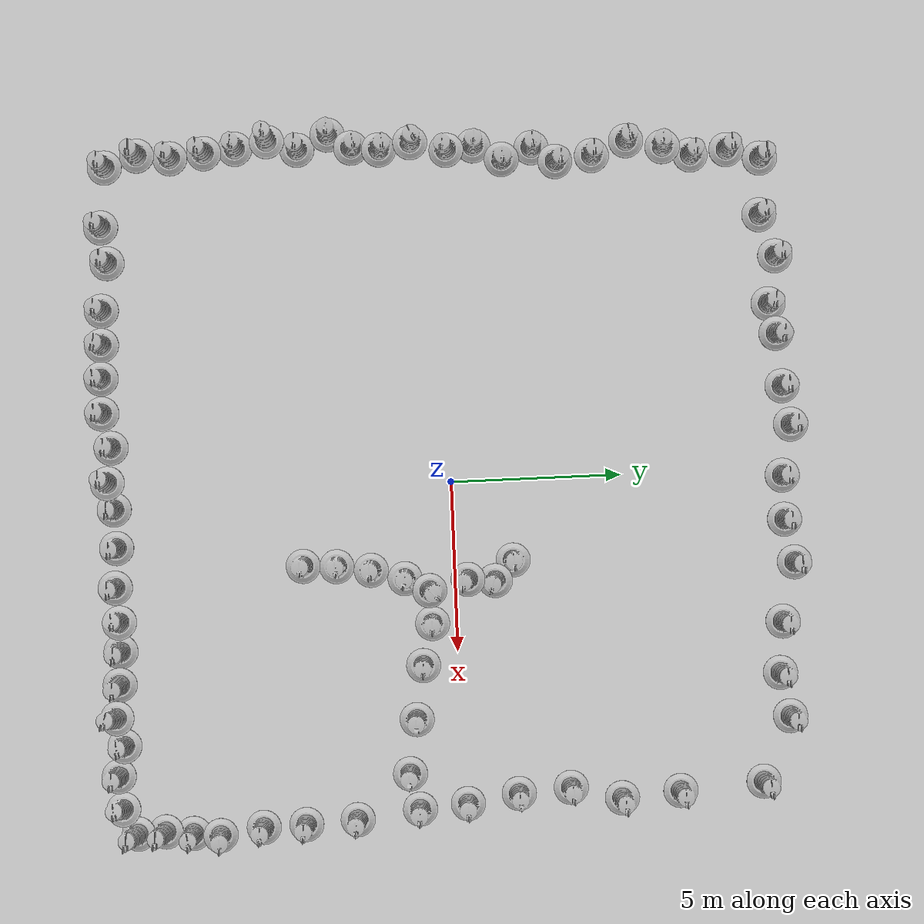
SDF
<sdf version="1.7">
 <world name="default">
  <light name="sun" type="directional">
   <pose>0 0 10 0 -0 0</pose>
   <diffuse>0.8 0.8 0.8 1</diffuse>
   <specular>0.2 0.2 0.2 1</specular>
   <attenuation>
    <range>1000</range>
    <constant>0.9</constant>
    <linear>0.01</linear>
    <quadratic>0.001</quadratic>
   </attenuation>
   <direction>-0.5 0.1 -0.9</direction>
   <spot><inner_angle>0</inner_angle><outer_angle>0</outer_angle><falloff>0</falloff></spot>
  </light>
  <model name="ground_plane">
   <static>1</static>
   <link name="link">
    <collision name="collision">
     <geometry><plane><normal>0 0 1</normal><size>100 100</size></plane></geometry>
     <surface><friction><ode><mu>100</mu><mu2>50</mu2></ode></friction></surface>
    </collision>
    <visual name="visual">
     <cast_shadows>0</cast_shadows>
     <geometry><plane><normal>0 0 1</normal><size>100 100</size></plane></geometry>
     <material>
      <script><uri>file://media/materials/scripts/gazebo.material</uri><name>Gazebo/Grey</name></script>
     </material>
    </visual>
   </link>
  </model>
  <gravity>0 0 -9.8</gravity>
  <magnetic_field>6e-06 2.3e-05 -4.2e-05</magnetic_field>
  <atmosphere type="adiabatic"/>
  <physics type="ode">
   <max_step_size>0.001</max_step_size>
   <real_time_factor>1</real_time_factor>
   <real_time_update_rate>1000</real_time_update_rate>
  </physics>
  <scene><ambient>0.4 0.4 0.4 1</ambient><background>0.7 0.7 0.7 1</background><shadows>1</shadows></scene>
  <audio><device>default</device></audio>
  <spherical_coordinates>
   <surface_model>EARTH_WGS84</surface_model>
   <latitude_deg>0</latitude_deg>
   <longitude_deg>0</longitude_deg>
   <elevation>0</elevation>
   <heading_deg>0</heading_deg>
  </spherical_coordinates>
  <model name="Construction Barrel">
   <link name="link">
    <inertial>
     <pose>0 0 0.4 0 -0 0</pose>
     <mass>500</mass>
     <inertia><ixx>51.2096</ixx><iyy>51.2096</iyy><izz>25</izz><ixy>0</ixy><ixz>0</ixz><iyz>0</iyz></inertia>
    </inertial>
    <collision name="collision">
     <geometry><mesh><uri>model://construction_barrel/meshes/construction_barrel.dae</uri></mesh></geometry>
    </collision>
    <visual name="visual">
     <geometry><mesh><uri>model://construction_barrel/meshes/construction_barrel.dae</uri></mesh></geometry>
    </visual>
   </link>
   <pose>2.37584 1.73446 -0.00473 0.006341 0.001678 0.021013</pose>
  </model>
  <model name="Construction Barrel_0">
   <link name="link">
    <inertial>
     <pose>0 0 0.4 0 -0 0</pose>
     <mass>500</mass>
     <inertia><ixx>51.2096</ixx><iyy>51.2096</iyy><izz>25</izz><ixy>0</ixy><ixz>0</ixz><iyz>0</iyz></inertia>
    </inertial>
    <collision name="collision">
     <geometry><mesh><uri>model://construction_barrel/meshes/construction_barrel.dae</uri></mesh></geometry>
    </collision>
    <visual name="visual">
     <geometry><mesh><uri>model://construction_barrel/meshes/construction_barrel.dae</uri></mesh></geometry>
    </visual>
   </link>
   <pose>2.50257 -2.45719 -3e-06 -5e-06 -4e-06 -0.067931</pose>
  </model>
  <model name="Construction Barrel_1">
   <link name="link">
    <inertial>
     <pose>0 0 0.4 0 -0 0</pose>
     <mass>500</mass>
     <inertia><ixx>51.2096</ixx><iyy>51.2096</iyy><izz>25</izz><ixy>0</ixy><ixz>0</ixz><iyz>0</iyz></inertia>
    </inertial>
    <collision name="collision">
     <geometry><mesh><uri>model://construction_barrel/meshes/construction_barrel.dae</uri></mesh></geometry>
    </collision>
    <visual name="visual">
     <geometry><mesh><uri>model://construction_barrel/meshes/construction_barrel.dae</uri></mesh></geometry>
    </visual>
   </link>
   <pose>2.35213 -3.46361 0.013714 -0.026898 0.003541 0.042105</pose>
  </model>
  <model name="Construction Barrel_2">
   <link name="link">
    <inertial>
     <pose>0 0 0.4 0 -0 0</pose>
     <mass>500</mass>
     <inertia><ixx>51.2096</ixx><iyy>51.2096</iyy><izz>25</izz><ixy>0</ixy><ixz>0</ixz><iyz>0</iyz></inertia>
    </inertial>
    <collision name="collision">
     <geometry><mesh><uri>model://construction_barrel/meshes/construction_barrel.dae</uri></mesh></geometry>
    </collision>
    <visual name="visual">
     <geometry><mesh><uri>model://construction_barrel/meshes/construction_barrel.dae</uri></mesh></geometry>
    </visual>
   </link>
   <pose>2.88487 0.380989 0.065628 0.125437 0.030612 -0.034431</pose>
  </model>
  <model name="Construction Barrel_3">
   <link name="link">
    <inertial>
     <pose>0 0 0.4 0 -0 0</pose>
     <mass>500</mass>
     <inertia><ixx>51.2096</ixx><iyy>51.2096</iyy><izz>25</izz><ixy>0</ixy><ixz>0</ixz><iyz>0</iyz></inertia>
    </inertial>
    <collision name="collision">
     <geometry><mesh><uri>model://construction_barrel/meshes/construction_barrel.dae</uri></mesh></geometry>
    </collision>
    <visual name="visual">
     <geometry><mesh><uri>model://construction_barrel/meshes/construction_barrel.dae</uri></mesh></geometry>
    </visual>
   </link>
   <pose>2.9569 1.184 0.051015 0.068358 0.07355 -0.328238</pose>
  </model>
  <model name="Construction Barrel_4">
   <link name="link">
    <inertial>
     <pose>0 0 0.4 0 -0 0</pose>
     <mass>500</mass>
     <inertia><ixx>51.2096</ixx><iyy>51.2096</iyy><izz>25</izz><ixy>0</ixy><ixz>0</ixz><iyz>0</iyz></inertia>
    </inertial>
    <collision name="collision">
     <geometry><mesh><uri>model://construction_barrel/meshes/construction_barrel.dae</uri></mesh></geometry>
    </collision>
    <visual name="visual">
     <geometry><mesh><uri>model://construction_barrel/meshes/construction_barrel.dae</uri></mesh></geometry>
    </visual>
   </link>
   <pose>5.37112 -1.03424 -0 0 0 -6.5e-05</pose>
  </model>
  <model name="Construction Barrel_5">
   <link name="link">
    <inertial>
     <pose>0 0 0.4 0 -0 0</pose>
     <mass>500</mass>
     <inertia><ixx>51.2096</ixx><iyy>51.2096</iyy><izz>25</izz><ixy>0</ixy><ixz>0</ixz><iyz>0</iyz></inertia>
    </inertial>
    <collision name="collision">
     <geometry><mesh><uri>model://construction_barrel/meshes/construction_barrel.dae</uri></mesh></geometry>
    </collision>
    <visual name="visual">
     <geometry><mesh><uri>model://construction_barrel/meshes/construction_barrel.dae</uri></mesh></geometry>
    </visual>
   </link>
   <pose>6.95223 -1.29129 -0 0 0 -6.4e-05</pose>
  </model>
  <model name="Construction Barrel_6">
   <link name="link">
    <inertial>
     <pose>0 0 0.4 0 -0 0</pose>
     <mass>500</mass>
     <inertia><ixx>51.2096</ixx><iyy>51.2096</iyy><izz>25</izz><ixy>0</ixy><ixz>0</ixz><iyz>0</iyz></inertia>
    </inertial>
    <collision name="collision">
     <geometry><mesh><uri>model://construction_barrel/meshes/construction_barrel.dae</uri></mesh></geometry>
    </collision>
    <visual name="visual">
     <geometry><mesh><uri>model://construction_barrel/meshes/construction_barrel.dae</uri></mesh></geometry>
    </visual>
   </link>
   <pose>8.53969 -1.55613 -2e-06 7e-06 -4e-06 -6.6e-05</pose>
  </model>
  <model name="Construction Barrel_7">
   <link name="link">
    <inertial>
     <pose>0 0 0.4 0 -0 0</pose>
     <mass>500</mass>
     <inertia><ixx>51.2096</ixx><iyy>51.2096</iyy><izz>25</izz><ixy>0</ixy><ixz>0</ixz><iyz>0</iyz></inertia>
    </inertial>
    <collision name="collision">
     <geometry><mesh><uri>model://construction_barrel/meshes/construction_barrel.dae</uri></mesh></geometry>
    </collision>
    <visual name="visual">
     <geometry><mesh><uri>model://construction_barrel/meshes/construction_barrel.dae</uri></mesh></geometry>
    </visual>
   </link>
   <pose>2.30171 -4.45278 -4.8e-05 -9e-05 1e-06 -0.003947</pose>
  </model>
  <model name="Construction Barrel_0_clone">
   <link name="link">
    <inertial>
     <pose>0 0 0.4 0 -0 0</pose>
     <mass>500</mass>
     <inertia><ixx>51.2096</ixx><iyy>51.2096</iyy><izz>25</izz><ixy>0</ixy><ixz>0</ixz><iyz>0</iyz></inertia>
    </inertial>
    <collision name="collision">
     <geometry><mesh><uri>model://construction_barrel/meshes/construction_barrel.dae</uri></mesh></geometry>
    </collision>
    <visual name="visual">
     <geometry><mesh><uri>model://construction_barrel/meshes/construction_barrel.dae</uri></mesh></geometry>
    </visual>
   </link>
   <pose>2.78908 -1.46987 -1e-06 4e-06 -2e-06 -0.128858</pose>
  </model>
  <model name="Construction Barrel_0_clone_0">
   <link name="link">
    <inertial>
     <pose>0 0 0.4 0 -0 0</pose>
     <mass>500</mass>
     <inertia><ixx>51.2096</ixx><iyy>51.2096</iyy><izz>25</izz><ixy>0</ixy><ixz>0</ixz><iyz>0</iyz></inertia>
    </inertial>
    <collision name="collision">
     <geometry><mesh><uri>model://construction_barrel/meshes/construction_barrel.dae</uri></mesh></geometry>
    </collision>
    <visual name="visual">
     <geometry><mesh><uri>model://construction_barrel/meshes/construction_barrel.dae</uri></mesh></geometry>
    </visual>
   </link>
   <pose>4.14572 -0.714829 -0.001201 -0.0001 -0.001784 -0.018898</pose>
  </model>
  <model name="Construction Barrel_0_clone_1">
   <link name="link">
    <inertial>
     <pose>0 0 0.4 0 -0 0</pose>
     <mass>500</mass>
     <inertia><ixx>51.2096</ixx><iyy>51.2096</iyy><izz>25</izz><ixy>0</ixy><ixz>0</ixz><iyz>0</iyz></inertia>
    </inertial>
    <collision name="collision">
     <geometry><mesh><uri>model://construction_barrel/meshes/construction_barrel.dae</uri></mesh></geometry>
    </collision>
    <visual name="visual">
     <geometry><mesh><uri>model://construction_barrel/meshes/construction_barrel.dae</uri></mesh></geometry>
    </visual>
   </link>
   <pose>3.16937 -0.75779 0.052646 -0.042886 0.094713 0.814858</pose>
  </model>
  <model name="Construction Barrel_0_clone_2">
   <link name="link">
    <inertial>
     <pose>0 0 0.4 0 -0 0</pose>
     <mass>500</mass>
     <inertia><ixx>51.2096</ixx><iyy>51.2096</iyy><izz>25</izz><ixy>0</ixy><ixz>0</ixz><iyz>0</iyz></inertia>
    </inertial>
    <collision name="collision">
     <geometry><mesh><uri>model://construction_barrel/meshes/construction_barrel.dae</uri></mesh></geometry>
    </collision>
    <visual name="visual">
     <geometry><mesh><uri>model://construction_barrel/meshes/construction_barrel.dae</uri></mesh></geometry>
    </visual>
   </link>
   <pose>9.90202 -4.67154 -0 0 0 -0.000108</pose>
  </model>
  <model name="Construction Barrel_0_clone_3">
   <link name="link">
    <inertial>
     <pose>0 0 0.4 0 -0 0</pose>
     <mass>500</mass>
     <inertia><ixx>51.2096</ixx><iyy>51.2096</iyy><izz>25</izz><ixy>0</ixy><ixz>0</ixz><iyz>0</iyz></inertia>
    </inertial>
    <collision name="collision">
     <geometry><mesh><uri>model://construction_barrel/meshes/construction_barrel.dae</uri></mesh></geometry>
    </collision>
    <visual name="visual">
     <geometry><mesh><uri>model://construction_barrel/meshes/construction_barrel.dae</uri></mesh></geometry>
    </visual>
   </link>
   <pose>9.82313 -3.15342 -2e-06 7e-06 -4e-06 -0.000106</pose>
  </model>
  <model name="Construction Barrel_0_clone_4">
   <link name="link">
    <inertial>
     <pose>0 0 0.4 0 -0 0</pose>
     <mass>500</mass>
     <inertia><ixx>51.2096</ixx><iyy>51.2096</iyy><izz>25</izz><ixy>0</ixy><ixz>0</ixz><iyz>0</iyz></inertia>
    </inertial>
    <collision name="collision">
     <geometry><mesh><uri>model://construction_barrel/meshes/construction_barrel.dae</uri></mesh></geometry>
    </collision>
    <visual name="visual">
     <geometry><mesh><uri>model://construction_barrel/meshes/construction_barrel.dae</uri></mesh></geometry>
    </visual>
   </link>
   <pose>9.5933 -1.30683 -0 0 0 -9.8e-05</pose>
  </model>
  <model name="Construction Barrel_0_clone_5">
   <link name="link">
    <inertial>
     <pose>0 0 0.4 0 -0 0</pose>
     <mass>500</mass>
     <inertia><ixx>51.2096</ixx><iyy>51.2096</iyy><izz>25</izz><ixy>0</ixy><ixz>0</ixz><iyz>0</iyz></inertia>
    </inertial>
    <collision name="collision">
     <geometry><mesh><uri>model://construction_barrel/meshes/construction_barrel.dae</uri></mesh></geometry>
    </collision>
    <visual name="visual">
     <geometry><mesh><uri>model://construction_barrel/meshes/construction_barrel.dae</uri></mesh></geometry>
    </visual>
   </link>
   <pose>9.49171 0.109731 -0 0 0 -9.7e-05</pose>
  </model>
  <model name="Construction Barrel_0_clone_6">
   <link name="link">
    <inertial>
     <pose>0 0 0.4 0 -0 0</pose>
     <mass>500</mass>
     <inertia><ixx>51.2096</ixx><iyy>51.2096</iyy><izz>25</izz><ixy>0</ixy><ixz>0</ixz><iyz>0</iyz></inertia>
    </inertial>
    <collision name="collision">
     <geometry><mesh><uri>model://construction_barrel/meshes/construction_barrel.dae</uri></mesh></geometry>
    </collision>
    <visual name="visual">
     <geometry><mesh><uri>model://construction_barrel/meshes/construction_barrel.dae</uri></mesh></geometry>
    </visual>
   </link>
   <pose>9.25727 1.62235 -2e-06 7e-06 -4e-06 -0.000102</pose>
  </model>
  <model name="Construction Barrel_0_clone_7">
   <link name="link">
    <inertial>
     <pose>0 0 0.4 0 -0 0</pose>
     <mass>500</mass>
     <inertia><ixx>51.2096</ixx><iyy>51.2096</iyy><izz>25</izz><ixy>0</ixy><ixz>0</ixz><iyz>0</iyz></inertia>
    </inertial>
    <collision name="collision">
     <geometry><mesh><uri>model://construction_barrel/meshes/construction_barrel.dae</uri></mesh></geometry>
    </collision>
    <visual name="visual">
     <geometry><mesh><uri>model://construction_barrel/meshes/construction_barrel.dae</uri></mesh></geometry>
    </visual>
   </link>
   <pose>9.14266 3.15813 -2e-06 1e-06 8e-06 -9.3e-05</pose>
  </model>
  <model name="Construction Barrel_0_clone_8">
   <link name="link">
    <inertial>
     <pose>0 0 0.4 0 -0 0</pose>
     <mass>500</mass>
     <inertia><ixx>51.2096</ixx><iyy>51.2096</iyy><izz>25</izz><ixy>0</ixy><ixz>0</ixz><iyz>0</iyz></inertia>
    </inertial>
    <collision name="collision">
     <geometry><mesh><uri>model://construction_barrel/meshes/construction_barrel.dae</uri></mesh></geometry>
    </collision>
    <visual name="visual">
     <geometry><mesh><uri>model://construction_barrel/meshes/construction_barrel.dae</uri></mesh></geometry>
    </visual>
   </link>
   <pose>9.51128 4.65398 -1e-06 2e-06 -1e-06 -8.6e-05</pose>
  </model>
  <model name="Construction Barrel_0_clone_9">
   <link name="link">
    <inertial>
     <pose>0 0 0.4 0 -0 0</pose>
     <mass>500</mass>
     <inertia><ixx>51.2096</ixx><iyy>51.2096</iyy><izz>25</izz><ixy>0</ixy><ixz>0</ixz><iyz>0</iyz></inertia>
    </inertial>
    <collision name="collision">
     <geometry><mesh><uri>model://construction_barrel/meshes/construction_barrel.dae</uri></mesh></geometry>
    </collision>
    <visual name="visual">
     <geometry><mesh><uri>model://construction_barrel/meshes/construction_barrel.dae</uri></mesh></geometry>
    </visual>
   </link>
   <pose>9.37189 6.38208 -0 0 0 -8.8e-05</pose>
  </model>
  <model name="Construction Barrel_0_clone_10">
   <link name="link">
    <inertial>
     <pose>0 0 0.4 0 -0 0</pose>
     <mass>500</mass>
     <inertia><ixx>51.2096</ixx><iyy>51.2096</iyy><izz>25</izz><ixy>0</ixy><ixz>0</ixz><iyz>0</iyz></inertia>
    </inertial>
    <collision name="collision">
     <geometry><mesh><uri>model://construction_barrel/meshes/construction_barrel.dae</uri></mesh></geometry>
    </collision>
    <visual name="visual">
     <geometry><mesh><uri>model://construction_barrel/meshes/construction_barrel.dae</uri></mesh></geometry>
    </visual>
   </link>
   <pose>9.20173 8.84043 -1e-06 -4e-06 -2e-06 -9.5e-05</pose>
  </model>
  <model name="Construction Barrel_0_clone_11">
   <link name="link">
    <inertial>
     <pose>0 0 0.4 0 -0 0</pose>
     <mass>500</mass>
     <inertia><ixx>51.2096</ixx><iyy>51.2096</iyy><izz>25</izz><ixy>0</ixy><ixz>0</ixz><iyz>0</iyz></inertia>
    </inertial>
    <collision name="collision">
     <geometry><mesh><uri>model://construction_barrel/meshes/construction_barrel.dae</uri></mesh></geometry>
    </collision>
    <visual name="visual">
     <geometry><mesh><uri>model://construction_barrel/meshes/construction_barrel.dae</uri></mesh></geometry>
    </visual>
   </link>
   <pose>7.30957 9.70373 -0 0 0 -8.4e-05</pose>
  </model>
  <model name="Construction Barrel_0_clone_12">
   <link name="link">
    <inertial>
     <pose>0 0 0.4 0 -0 0</pose>
     <mass>500</mass>
     <inertia><ixx>51.2096</ixx><iyy>51.2096</iyy><izz>25</izz><ixy>0</ixy><ixz>0</ixz><iyz>0</iyz></inertia>
    </inertial>
    <collision name="collision">
     <geometry><mesh><uri>model://construction_barrel/meshes/construction_barrel.dae</uri></mesh></geometry>
    </collision>
    <visual name="visual">
     <geometry><mesh><uri>model://construction_barrel/meshes/construction_barrel.dae</uri></mesh></geometry>
    </visual>
   </link>
   <pose>6.02292 9.46247 -2e-06 7e-06 -4e-06 -9.3e-05</pose>
  </model>
  <model name="Construction Barrel_0_clone_13">
   <link name="link">
    <inertial>
     <pose>0 0 0.4 0 -0 0</pose>
     <mass>500</mass>
     <inertia><ixx>51.2096</ixx><iyy>51.2096</iyy><izz>25</izz><ixy>0</ixy><ixz>0</ixz><iyz>0</iyz></inertia>
    </inertial>
    <collision name="collision">
     <geometry><mesh><uri>model://construction_barrel/meshes/construction_barrel.dae</uri></mesh></geometry>
    </collision>
    <visual name="visual">
     <geometry><mesh><uri>model://construction_barrel/meshes/construction_barrel.dae</uri></mesh></geometry>
    </visual>
   </link>
   <pose>4.51483 9.60021 -0 0 0 -8.2e-05</pose>
  </model>
  <model name="Construction Barrel_0_clone_14">
   <link name="link">
    <inertial>
     <pose>0 0 0.4 0 -0 0</pose>
     <mass>500</mass>
     <inertia><ixx>51.2096</ixx><iyy>51.2096</iyy><izz>25</izz><ixy>0</ixy><ixz>0</ixz><iyz>0</iyz></inertia>
    </inertial>
    <collision name="collision">
     <geometry><mesh><uri>model://construction_barrel/meshes/construction_barrel.dae</uri></mesh></geometry>
    </collision>
    <visual name="visual">
     <geometry><mesh><uri>model://construction_barrel/meshes/construction_barrel.dae</uri></mesh></geometry>
    </visual>
   </link>
   <pose>2.78565 10.0142 -2e-06 1e-06 8e-06 -9.2e-05</pose>
  </model>
  <model name="Construction Barrel_0_clone_15">
   <link name="link">
    <inertial>
     <pose>0 0 0.4 0 -0 0</pose>
     <mass>500</mass>
     <inertia><ixx>51.2096</ixx><iyy>51.2096</iyy><izz>25</izz><ixy>0</ixy><ixz>0</ixz><iyz>0</iyz></inertia>
    </inertial>
    <collision name="collision">
     <geometry><mesh><uri>model://construction_barrel/meshes/construction_barrel.dae</uri></mesh></geometry>
    </collision>
    <visual name="visual">
     <geometry><mesh><uri>model://construction_barrel/meshes/construction_barrel.dae</uri></mesh></geometry>
    </visual>
   </link>
   <pose>1.51486 9.77536 -2e-06 -0 7e-06 -8.3e-05</pose>
  </model>
  <model name="Construction Barrel_0_clone_16">
   <link name="link">
    <inertial>
     <pose>0 0 0.4 0 -0 0</pose>
     <mass>500</mass>
     <inertia><ixx>51.2096</ixx><iyy>51.2096</iyy><izz>25</izz><ixy>0</ixy><ixz>0</ixz><iyz>0</iyz></inertia>
    </inertial>
    <collision name="collision">
     <geometry><mesh><uri>model://construction_barrel/meshes/construction_barrel.dae</uri></mesh></geometry>
    </collision>
    <visual name="visual">
     <geometry><mesh><uri>model://construction_barrel/meshes/construction_barrel.dae</uri></mesh></geometry>
    </visual>
   </link>
   <pose>0.218886 9.76136 -1e-06 -4e-06 -2e-06 -9e-05</pose>
  </model>
  <model name="Construction Barrel_0_clone_17">
   <link name="link">
    <inertial>
     <pose>0 0 0.4 0 -0 0</pose>
     <mass>500</mass>
     <inertia><ixx>51.2096</ixx><iyy>51.2096</iyy><izz>25</izz><ixy>0</ixy><ixz>0</ixz><iyz>0</iyz></inertia>
    </inertial>
    <collision name="collision">
     <geometry><mesh><uri>model://construction_barrel/meshes/construction_barrel.dae</uri></mesh></geometry>
    </collision>
    <visual name="visual">
     <geometry><mesh><uri>model://construction_barrel/meshes/construction_barrel.dae</uri></mesh></geometry>
    </visual>
   </link>
   <pose>-1.27101 10.0714 -0 0 0 -7.9e-05</pose>
  </model>
  <model name="Construction Barrel_0_clone_18">
   <link name="link">
    <inertial>
     <pose>0 0 0.4 0 -0 0</pose>
     <mass>500</mass>
     <inertia><ixx>51.2096</ixx><iyy>51.2096</iyy><izz>25</izz><ixy>0</ixy><ixz>0</ixz><iyz>0</iyz></inertia>
    </inertial>
    <collision name="collision">
     <geometry><mesh><uri>model://construction_barrel/meshes/construction_barrel.dae</uri></mesh></geometry>
    </collision>
    <visual name="visual">
     <geometry><mesh><uri>model://construction_barrel/meshes/construction_barrel.dae</uri></mesh></geometry>
    </visual>
   </link>
   <pose>-2.41263 9.86571 -0 1e-06 7e-06 -8.3e-05</pose>
  </model>
  <model name="Construction Barrel_0_clone_19">
   <link name="link">
    <inertial>
     <pose>0 0 0.4 0 -0 0</pose>
     <mass>500</mass>
     <inertia><ixx>51.2096</ixx><iyy>51.2096</iyy><izz>25</izz><ixy>0</ixy><ixz>0</ixz><iyz>0</iyz></inertia>
    </inertial>
    <collision name="collision">
     <geometry><mesh><uri>model://construction_barrel/meshes/construction_barrel.dae</uri></mesh></geometry>
    </collision>
    <visual name="visual">
     <geometry><mesh><uri>model://construction_barrel/meshes/construction_barrel.dae</uri></mesh></geometry>
    </visual>
   </link>
   <pose>-3.96242 9.74575 0.037582 -0.028508 0.068737 -0.142654</pose>
  </model>
  <model name="Construction Barrel_0_clone_20">
   <link name="link">
    <inertial>
     <pose>0 0 0.4 0 -0 0</pose>
     <mass>500</mass>
     <inertia><ixx>51.2096</ixx><iyy>51.2096</iyy><izz>25</izz><ixy>0</ixy><ixz>0</ixz><iyz>0</iyz></inertia>
    </inertial>
    <collision name="collision">
     <geometry><mesh><uri>model://construction_barrel/meshes/construction_barrel.dae</uri></mesh></geometry>
    </collision>
    <visual name="visual">
     <geometry><mesh><uri>model://construction_barrel/meshes/construction_barrel.dae</uri></mesh></geometry>
    </visual>
   </link>
   <pose>-4.84553 9.56104 -1.3e-05 -5e-06 1.6e-05 -0.183796</pose>
  </model>
  <model name="Construction Barrel_0_clone_21">
   <link name="link">
    <inertial>
     <pose>0 0 0.4 0 -0 0</pose>
     <mass>500</mass>
     <inertia><ixx>51.2096</ixx><iyy>51.2096</iyy><izz>25</izz><ixy>0</ixy><ixz>0</ixz><iyz>0</iyz></inertia>
    </inertial>
    <collision name="collision">
     <geometry><mesh><uri>model://construction_barrel/meshes/construction_barrel.dae</uri></mesh></geometry>
    </collision>
    <visual name="visual">
     <geometry><mesh><uri>model://construction_barrel/meshes/construction_barrel.dae</uri></mesh></geometry>
    </visual>
   </link>
   <pose>-6.24817 9.81729 -5e-06 1.8e-05 -1e-05 -7.3e-05</pose>
  </model>
  <model name="Construction Barrel_0_clone_22">
   <link name="link">
    <inertial>
     <pose>0 0 0.4 0 -0 0</pose>
     <mass>500</mass>
     <inertia><ixx>51.2096</ixx><iyy>51.2096</iyy><izz>25</izz><ixy>0</ixy><ixz>0</ixz><iyz>0</iyz></inertia>
    </inertial>
    <collision name="collision">
     <geometry><mesh><uri>model://construction_barrel/meshes/construction_barrel.dae</uri></mesh></geometry>
    </collision>
    <visual name="visual">
     <geometry><mesh><uri>model://construction_barrel/meshes/construction_barrel.dae</uri></mesh></geometry>
    </visual>
   </link>
   <pose>-7.47518 9.4019 -2e-06 7e-06 4e-06 -9e-05</pose>
  </model>
  <model name="Construction Barrel_0_clone_23">
   <link name="link">
    <inertial>
     <pose>0 0 0.4 0 -0 0</pose>
     <mass>500</mass>
     <inertia><ixx>51.2096</ixx><iyy>51.2096</iyy><izz>25</izz><ixy>0</ixy><ixz>0</ixz><iyz>0</iyz></inertia>
    </inertial>
    <collision name="collision">
     <geometry><mesh><uri>model://construction_barrel/meshes/construction_barrel.dae</uri></mesh></geometry>
    </collision>
    <visual name="visual">
     <geometry><mesh><uri>model://construction_barrel/meshes/construction_barrel.dae</uri></mesh></geometry>
    </visual>
   </link>
   <pose>-9.14234 9.48613 -2e-06 0 7e-06 -0.03339</pose>
  </model>
  <model name="Construction Barrel_0_clone_24">
   <link name="link">
    <inertial>
     <pose>0 0 0.4 0 -0 0</pose>
     <mass>500</mass>
     <inertia><ixx>51.2096</ixx><iyy>51.2096</iyy><izz>25</izz><ixy>0</ixy><ixz>0</ixz><iyz>0</iyz></inertia>
    </inertial>
    <collision name="collision">
     <geometry><mesh><uri>model://construction_barrel/meshes/construction_barrel.dae</uri></mesh></geometry>
    </collision>
    <visual name="visual">
     <geometry><mesh><uri>model://construction_barrel/meshes/construction_barrel.dae</uri></mesh></geometry>
    </visual>
   </link>
   <pose>-9.43437 8.51346 -1e-06 3e-06 -2e-06 0.088286</pose>
  </model>
  <model name="Construction Barrel_0_clone_25">
   <link name="link">
    <inertial>
     <pose>0 0 0.4 0 -0 0</pose>
     <mass>500</mass>
     <inertia><ixx>51.2096</ixx><iyy>51.2096</iyy><izz>25</izz><ixy>0</ixy><ixz>0</ixz><iyz>0</iyz></inertia>
    </inertial>
    <collision name="collision">
     <geometry><mesh><uri>model://construction_barrel/meshes/construction_barrel.dae</uri></mesh></geometry>
    </collision>
    <visual name="visual">
     <geometry><mesh><uri>model://construction_barrel/meshes/construction_barrel.dae</uri></mesh></geometry>
    </visual>
   </link>
   <pose>-9.32139 7.45024 -3e-05 3.9e-05 -1e-05 -0.021095</pose>
  </model>
  <model name="Construction Barrel_0_clone_26">
   <link name="link">
    <inertial>
     <pose>0 0 0.4 0 -0 0</pose>
     <mass>500</mass>
     <inertia><ixx>51.2096</ixx><iyy>51.2096</iyy><izz>25</izz><ixy>0</ixy><ixz>0</ixz><iyz>0</iyz></inertia>
    </inertial>
    <collision name="collision">
     <geometry><mesh><uri>model://construction_barrel/meshes/construction_barrel.dae</uri></mesh></geometry>
    </collision>
    <visual name="visual">
     <geometry><mesh><uri>model://construction_barrel/meshes/construction_barrel.dae</uri></mesh></geometry>
    </visual>
   </link>
   <pose>-9.58871 6.63534 0.049439 0.097143 -0.012762 -0.137717</pose>
  </model>
  <model name="Construction Barrel_0_clone_27">
   <link name="link">
    <inertial>
     <pose>0 0 0.4 0 -0 0</pose>
     <mass>500</mass>
     <inertia><ixx>51.2096</ixx><iyy>51.2096</iyy><izz>25</izz><ixy>0</ixy><ixz>0</ixz><iyz>0</iyz></inertia>
    </inertial>
    <collision name="collision">
     <geometry><mesh><uri>model://construction_barrel/meshes/construction_barrel.dae</uri></mesh></geometry>
    </collision>
    <visual name="visual">
     <geometry><mesh><uri>model://construction_barrel/meshes/construction_barrel.dae</uri></mesh></geometry>
    </visual>
   </link>
   <pose>-9.8206 5.57162 -0 1e-06 -0 0.2332</pose>
  </model>
  <model name="Construction Barrel_0_clone_28">
   <link name="link">
    <inertial>
     <pose>0 0 0.4 0 -0 0</pose>
     <mass>500</mass>
     <inertia><ixx>51.2096</ixx><iyy>51.2096</iyy><izz>25</izz><ixy>0</ixy><ixz>0</ixz><iyz>0</iyz></inertia>
    </inertial>
    <collision name="collision">
     <geometry><mesh><uri>model://construction_barrel/meshes/construction_barrel.dae</uri></mesh></geometry>
    </collision>
    <visual name="visual">
     <geometry><mesh><uri>model://construction_barrel/meshes/construction_barrel.dae</uri></mesh></geometry>
    </visual>
   </link>
   <pose>-9.42612 4.5461 4e-06 1.1e-05 -6e-06 -6.7e-05</pose>
  </model>
  <model name="Construction Barrel_0_clone_29">
   <link name="link">
    <inertial>
     <pose>0 0 0.4 0 -0 0</pose>
     <mass>500</mass>
     <inertia><ixx>51.2096</ixx><iyy>51.2096</iyy><izz>25</izz><ixy>0</ixy><ixz>0</ixz><iyz>0</iyz></inertia>
    </inertial>
    <collision name="collision">
     <geometry><mesh><uri>model://construction_barrel/meshes/construction_barrel.dae</uri></mesh></geometry>
    </collision>
    <visual name="visual">
     <geometry><mesh><uri>model://construction_barrel/meshes/construction_barrel.dae</uri></mesh></geometry>
    </visual>
   </link>
   <pose>-9.29127 3.45812 0.051732 -0.095011 0.039307 -0.12438</pose>
  </model>
  <model name="Construction Barrel_0_clone_30">
   <link name="link">
    <inertial>
     <pose>0 0 0.4 0 -0 0</pose>
     <mass>500</mass>
     <inertia><ixx>51.2096</ixx><iyy>51.2096</iyy><izz>25</izz><ixy>0</ixy><ixz>0</ixz><iyz>0</iyz></inertia>
    </inertial>
    <collision name="collision">
     <geometry><mesh><uri>model://construction_barrel/meshes/construction_barrel.dae</uri></mesh></geometry>
    </collision>
    <visual name="visual">
     <geometry><mesh><uri>model://construction_barrel/meshes/construction_barrel.dae</uri></mesh></geometry>
    </visual>
   </link>
   <pose>-9.73322 2.77655 -0 0 -0 0.055739</pose>
  </model>
  <model name="Construction Barrel_0_clone_31">
   <link name="link">
    <inertial>
     <pose>0 0 0.4 0 -0 0</pose>
     <mass>500</mass>
     <inertia><ixx>51.2096</ixx><iyy>51.2096</iyy><izz>25</izz><ixy>0</ixy><ixz>0</ixz><iyz>0</iyz></inertia>
    </inertial>
    <collision name="collision">
     <geometry><mesh><uri>model://construction_barrel/meshes/construction_barrel.dae</uri></mesh></geometry>
    </collision>
    <visual name="visual">
     <geometry><mesh><uri>model://construction_barrel/meshes/construction_barrel.dae</uri></mesh></geometry>
    </visual>
   </link>
   <pose>-9.42254 1.8893 0.041809 0.007498 0.082081 0.067486</pose>
  </model>
  <model name="Construction Barrel_0_clone_32">
   <link name="link">
    <inertial>
     <pose>0 0 0.4 0 -0 0</pose>
     <mass>500</mass>
     <inertia><ixx>51.2096</ixx><iyy>51.2096</iyy><izz>25</izz><ixy>0</ixy><ixz>0</ixz><iyz>0</iyz></inertia>
    </inertial>
    <collision name="collision">
     <geometry><mesh><uri>model://construction_barrel/meshes/construction_barrel.dae</uri></mesh></geometry>
    </collision>
    <visual name="visual">
     <geometry><mesh><uri>model://construction_barrel/meshes/construction_barrel.dae</uri></mesh></geometry>
    </visual>
   </link>
   <pose>-9.86262 1.06812 -1e-05 -3e-06 2e-06 -0.148723</pose>
  </model>
  <model name="Construction Barrel_0_clone_33">
   <link name="link">
    <inertial>
     <pose>0 0 0.4 0 -0 0</pose>
     <mass>500</mass>
     <inertia><ixx>51.2096</ixx><iyy>51.2096</iyy><izz>25</izz><ixy>0</ixy><ixz>0</ixz><iyz>0</iyz></inertia>
    </inertial>
    <collision name="collision">
     <geometry><mesh><uri>model://construction_barrel/meshes/construction_barrel.dae</uri></mesh></geometry>
    </collision>
    <visual name="visual">
     <geometry><mesh><uri>model://construction_barrel/meshes/construction_barrel.dae</uri></mesh></geometry>
    </visual>
   </link>
   <pose>-9.75767 0.270612 0.052292 0.102817 0.01352 -0.09151</pose>
  </model>
  <model name="Construction Barrel_0_clone_34">
   <link name="link">
    <inertial>
     <pose>0 0 0.4 0 -0 0</pose>
     <mass>500</mass>
     <inertia><ixx>51.2096</ixx><iyy>51.2096</iyy><izz>25</izz><ixy>0</ixy><ixz>0</ixz><iyz>0</iyz></inertia>
    </inertial>
    <collision name="collision">
     <geometry><mesh><uri>model://construction_barrel/meshes/construction_barrel.dae</uri></mesh></geometry>
    </collision>
    <visual name="visual">
     <geometry><mesh><uri>model://construction_barrel/meshes/construction_barrel.dae</uri></mesh></geometry>
    </visual>
   </link>
   <pose>-10.0281 -0.785659 0.030389 -0.059645 0.007848 0.460413</pose>
  </model>
  <model name="Construction Barrel_0_clone_35">
   <link name="link">
    <inertial>
     <pose>0 0 0.4 0 -0 0</pose>
     <mass>500</mass>
     <inertia><ixx>51.2096</ixx><iyy>51.2096</iyy><izz>25</izz><ixy>0</ixy><ixz>0</ixz><iyz>0</iyz></inertia>
    </inertial>
    <collision name="collision">
     <geometry><mesh><uri>model://construction_barrel/meshes/construction_barrel.dae</uri></mesh></geometry>
    </collision>
    <visual name="visual">
     <geometry><mesh><uri>model://construction_barrel/meshes/construction_barrel.dae</uri></mesh></geometry>
    </visual>
   </link>
   <pose>-9.8489 -1.71412 0.060166 -0.123799 0.015423 0.057914</pose>
  </model>
  <model name="Construction Barrel_0_clone_36">
   <link name="link">
    <inertial>
     <pose>0 0 0.4 0 -0 0</pose>
     <mass>500</mass>
     <inertia><ixx>51.2096</ixx><iyy>51.2096</iyy><izz>25</izz><ixy>0</ixy><ixz>0</ixz><iyz>0</iyz></inertia>
    </inertial>
    <collision name="collision">
     <geometry><mesh><uri>model://construction_barrel/meshes/construction_barrel.dae</uri></mesh></geometry>
    </collision>
    <visual name="visual">
     <geometry><mesh><uri>model://construction_barrel/meshes/construction_barrel.dae</uri></mesh></geometry>
    </visual>
   </link>
   <pose>-9.94058 -2.52926 0.056958 -0.10472 0.042287 0.143986</pose>
  </model>
  <model name="Construction Barrel_0_clone_37">
   <link name="link">
    <inertial>
     <pose>0 0 0.4 0 -0 0</pose>
     <mass>500</mass>
     <inertia><ixx>51.2096</ixx><iyy>51.2096</iyy><izz>25</izz><ixy>0</ixy><ixz>0</ixz><iyz>0</iyz></inertia>
    </inertial>
    <collision name="collision">
     <geometry><mesh><uri>model://construction_barrel/meshes/construction_barrel.dae</uri></mesh></geometry>
    </collision>
    <visual name="visual">
     <geometry><mesh><uri>model://construction_barrel/meshes/construction_barrel.dae</uri></mesh></geometry>
    </visual>
   </link>
   <pose>-10.362 -3.2091 0.013669 -0.028154 -0.003458 -0.119972</pose>
  </model>
  <model name="Construction Barrel_0_clone_38">
   <link name="link">
    <inertial>
     <pose>0 0 0.4 0 -0 0</pose>
     <mass>500</mass>
     <inertia><ixx>51.2096</ixx><iyy>51.2096</iyy><izz>25</izz><ixy>0</ixy><ixz>0</ixz><iyz>0</iyz></inertia>
    </inertial>
    <collision name="collision">
     <geometry><mesh><uri>model://construction_barrel/meshes/construction_barrel.dae</uri></mesh></geometry>
    </collision>
    <visual name="visual">
     <geometry><mesh><uri>model://construction_barrel/meshes/construction_barrel.dae</uri></mesh></geometry>
    </visual>
   </link>
   <pose>-9.95467 -4.11621 -1.8e-05 0 -0 -0.010426</pose>
  </model>
  <model name="Construction Barrel_0_clone_39">
   <link name="link">
    <inertial>
     <pose>0 0 0.4 0 -0 0</pose>
     <mass>500</mass>
     <inertia><ixx>51.2096</ixx><iyy>51.2096</iyy><izz>25</izz><ixy>0</ixy><ixz>0</ixz><iyz>0</iyz></inertia>
    </inertial>
    <collision name="collision">
     <geometry><mesh><uri>model://construction_barrel/meshes/construction_barrel.dae</uri></mesh></geometry>
    </collision>
    <visual name="visual">
     <geometry><mesh><uri>model://construction_barrel/meshes/construction_barrel.dae</uri></mesh></geometry>
    </visual>
   </link>
   <pose>-10.2253 -4.99521 0.046421 0.007987 -0.091143 0.081078</pose>
  </model>
  <model name="Construction Barrel_0_clone_40">
   <link name="link">
    <inertial>
     <pose>0 0 0.4 0 -0 0</pose>
     <mass>500</mass>
     <inertia><ixx>51.2096</ixx><iyy>51.2096</iyy><izz>25</izz><ixy>0</ixy><ixz>0</ixz><iyz>0</iyz></inertia>
    </inertial>
    <collision name="collision">
     <geometry><mesh><uri>model://construction_barrel/meshes/construction_barrel.dae</uri></mesh></geometry>
    </collision>
    <visual name="visual">
     <geometry><mesh><uri>model://construction_barrel/meshes/construction_barrel.dae</uri></mesh></geometry>
    </visual>
   </link>
   <pose>-10.0599 -5.94073 -3.1e-05 -5.1e-05 -1.3e-05 0.04274</pose>
  </model>
  <model name="Construction Barrel_0_clone_41">
   <link name="link">
    <inertial>
     <pose>0 0 0.4 0 -0 0</pose>
     <mass>500</mass>
     <inertia><ixx>51.2096</ixx><iyy>51.2096</iyy><izz>25</izz><ixy>0</ixy><ixz>0</ixz><iyz>0</iyz></inertia>
    </inertial>
    <collision name="collision">
     <geometry><mesh><uri>model://construction_barrel/meshes/construction_barrel.dae</uri></mesh></geometry>
    </collision>
    <visual name="visual">
     <geometry><mesh><uri>model://construction_barrel/meshes/construction_barrel.dae</uri></mesh></geometry>
    </visual>
   </link>
   <pose>-9.96424 -6.85596 0.032565 0.06391 0.008388 0.050514</pose>
  </model>
  <model name="Construction Barrel_0_clone_42">
   <link name="link">
    <inertial>
     <pose>0 0 0.4 0 -0 0</pose>
     <mass>500</mass>
     <inertia><ixx>51.2096</ixx><iyy>51.2096</iyy><izz>25</izz><ixy>0</ixy><ixz>0</ixz><iyz>0</iyz></inertia>
    </inertial>
    <collision name="collision">
     <geometry><mesh><uri>model://construction_barrel/meshes/construction_barrel.dae</uri></mesh></geometry>
    </collision>
    <visual name="visual">
     <geometry><mesh><uri>model://construction_barrel/meshes/construction_barrel.dae</uri></mesh></geometry>
    </visual>
   </link>
   <pose>-9.86279 -7.86613 -1.2e-05 1.4e-05 -2e-06 -0.036384</pose>
  </model>
  <model name="Construction Barrel_0_clone_43">
   <link name="link">
    <inertial>
     <pose>0 0 0.4 0 -0 0</pose>
     <mass>500</mass>
     <inertia><ixx>51.2096</ixx><iyy>51.2096</iyy><izz>25</izz><ixy>0</ixy><ixz>0</ixz><iyz>0</iyz></inertia>
    </inertial>
    <collision name="collision">
     <geometry><mesh><uri>model://construction_barrel/meshes/construction_barrel.dae</uri></mesh></geometry>
    </collision>
    <visual name="visual">
     <geometry><mesh><uri>model://construction_barrel/meshes/construction_barrel.dae</uri></mesh></geometry>
    </visual>
   </link>
   <pose>-9.98046 -8.83809 0.015396 0.030198 -0.003868 -0.045499</pose>
  </model>
  <model name="Construction Barrel_0_clone_44">
   <link name="link">
    <inertial>
     <pose>0 0 0.4 0 -0 0</pose>
     <mass>500</mass>
     <inertia><ixx>51.2096</ixx><iyy>51.2096</iyy><izz>25</izz><ixy>0</ixy><ixz>0</ixz><iyz>0</iyz></inertia>
    </inertial>
    <collision name="collision">
     <geometry><mesh><uri>model://construction_barrel/meshes/construction_barrel.dae</uri></mesh></geometry>
    </collision>
    <visual name="visual">
     <geometry><mesh><uri>model://construction_barrel/meshes/construction_barrel.dae</uri></mesh></geometry>
    </visual>
   </link>
   <pose>-9.67482 -9.80516 -1e-06 -4e-06 3e-06 -0.012769</pose>
  </model>
  <model name="Construction Barrel_0_clone_45">
   <link name="link">
    <inertial>
     <pose>0 0 0.4 0 -0 0</pose>
     <mass>500</mass>
     <inertia><ixx>51.2096</ixx><iyy>51.2096</iyy><izz>25</izz><ixy>0</ixy><ixz>0</ixz><iyz>0</iyz></inertia>
    </inertial>
    <collision name="collision">
     <geometry><mesh><uri>model://construction_barrel/meshes/construction_barrel.dae</uri></mesh></geometry>
    </collision>
    <visual name="visual">
     <geometry><mesh><uri>model://construction_barrel/meshes/construction_barrel.dae</uri></mesh></geometry>
    </visual>
   </link>
   <pose>-7.91772 -9.98866 2e-06 5e-06 4e-06 -6.6e-05</pose>
  </model>
  <model name="Construction Barrel_0_clone_46">
   <link name="link">
    <inertial>
     <pose>0 0 0.4 0 -0 0</pose>
     <mass>500</mass>
     <inertia><ixx>51.2096</ixx><iyy>51.2096</iyy><izz>25</izz><ixy>0</ixy><ixz>0</ixz><iyz>0</iyz></inertia>
    </inertial>
    <collision name="collision">
     <geometry><mesh><uri>model://construction_barrel/meshes/construction_barrel.dae</uri></mesh></geometry>
    </collision>
    <visual name="visual">
     <geometry><mesh><uri>model://construction_barrel/meshes/construction_barrel.dae</uri></mesh></geometry>
    </visual>
   </link>
   <pose>-6.85574 -9.84559 -5e-06 -9e-06 -9e-06 -7.3e-05</pose>
  </model>
  <model name="Construction Barrel_0_clone_47">
   <link name="link">
    <inertial>
     <pose>0 0 0.4 0 -0 0</pose>
     <mass>500</mass>
     <inertia><ixx>51.2096</ixx><iyy>51.2096</iyy><izz>25</izz><ixy>0</ixy><ixz>0</ixz><iyz>0</iyz></inertia>
    </inertial>
    <collision name="collision">
     <geometry><mesh><uri>model://construction_barrel/meshes/construction_barrel.dae</uri></mesh></geometry>
    </collision>
    <visual name="visual">
     <geometry><mesh><uri>model://construction_barrel/meshes/construction_barrel.dae</uri></mesh></geometry>
    </visual>
   </link>
   <pose>-5.46629 -10.0719 5.1e-05 2e-06 0.000156 0.010386</pose>
  </model>
  <model name="Construction Barrel_0_clone_48">
   <link name="link">
    <inertial>
     <pose>0 0 0.4 0 -0 0</pose>
     <mass>500</mass>
     <inertia><ixx>51.2096</ixx><iyy>51.2096</iyy><izz>25</izz><ixy>0</ixy><ixz>0</ixz><iyz>0</iyz></inertia>
    </inertial>
    <collision name="collision">
     <geometry><mesh><uri>model://construction_barrel/meshes/construction_barrel.dae</uri></mesh></geometry>
    </collision>
    <visual name="visual">
     <geometry><mesh><uri>model://construction_barrel/meshes/construction_barrel.dae</uri></mesh></geometry>
    </visual>
   </link>
   <pose>-4.45104 -10.1134 -3e-06 1.1e-05 -6e-06 -0.136135</pose>
  </model>
  <model name="Construction Barrel_0_clone_49">
   <link name="link">
    <inertial>
     <pose>0 0 0.4 0 -0 0</pose>
     <mass>500</mass>
     <inertia><ixx>51.2096</ixx><iyy>51.2096</iyy><izz>25</izz><ixy>0</ixy><ixz>0</ixz><iyz>0</iyz></inertia>
    </inertial>
    <collision name="collision">
     <geometry><mesh><uri>model://construction_barrel/meshes/construction_barrel.dae</uri></mesh></geometry>
    </collision>
    <visual name="visual">
     <geometry><mesh><uri>model://construction_barrel/meshes/construction_barrel.dae</uri></mesh></geometry>
    </visual>
   </link>
   <pose>-3.46704 -10.1647 0.014339 0.0037 0.028141 0.097697</pose>
  </model>
  <model name="Construction Barrel_0_clone_50">
   <link name="link">
    <inertial>
     <pose>0 0 0.4 0 -0 0</pose>
     <mass>500</mass>
     <inertia><ixx>51.2096</ixx><iyy>51.2096</iyy><izz>25</izz><ixy>0</ixy><ixz>0</ixz><iyz>0</iyz></inertia>
    </inertial>
    <collision name="collision">
     <geometry><mesh><uri>model://construction_barrel/meshes/construction_barrel.dae</uri></mesh></geometry>
    </collision>
    <visual name="visual">
     <geometry><mesh><uri>model://construction_barrel/meshes/construction_barrel.dae</uri></mesh></geometry>
    </visual>
   </link>
   <pose>-2.43706 -10.1877 -1e-06 2e-06 -2e-06 -7.2e-05</pose>
  </model>
  <model name="Construction Barrel_0_clone_51">
   <link name="link">
    <inertial>
     <pose>0 0 0.4 0 -0 0</pose>
     <mass>500</mass>
     <inertia><ixx>51.2096</ixx><iyy>51.2096</iyy><izz>25</izz><ixy>0</ixy><ixz>0</ixz><iyz>0</iyz></inertia>
    </inertial>
    <collision name="collision">
     <geometry><mesh><uri>model://construction_barrel/meshes/construction_barrel.dae</uri></mesh></geometry>
    </collision>
    <visual name="visual">
     <geometry><mesh><uri>model://construction_barrel/meshes/construction_barrel.dae</uri></mesh></geometry>
    </visual>
   </link>
   <pose>-1.41768 -9.96009 -0 0 -0 -0.004953</pose>
  </model>
  <model name="Construction Barrel_0_clone_52">
   <link name="link">
    <inertial>
     <pose>0 0 0.4 0 -0 0</pose>
     <mass>500</mass>
     <inertia><ixx>51.2096</ixx><iyy>51.2096</iyy><izz>25</izz><ixy>0</ixy><ixz>0</ixz><iyz>0</iyz></inertia>
    </inertial>
    <collision name="collision">
     <geometry><mesh><uri>model://construction_barrel/meshes/construction_barrel.dae</uri></mesh></geometry>
    </collision>
    <visual name="visual">
     <geometry><mesh><uri>model://construction_barrel/meshes/construction_barrel.dae</uri></mesh></geometry>
    </visual>
   </link>
   <pose>-0.380841 -10.1047 0.052376 0.013595 -0.102893 0.079236</pose>
  </model>
  <model name="Construction Barrel_0_clone_53">
   <link name="link">
    <inertial>
     <pose>0 0 0.4 0 -0 0</pose>
     <mass>500</mass>
     <inertia><ixx>51.2096</ixx><iyy>51.2096</iyy><izz>25</izz><ixy>0</ixy><ixz>0</ixz><iyz>0</iyz></inertia>
    </inertial>
    <collision name="collision">
     <geometry><mesh><uri>model://construction_barrel/meshes/construction_barrel.dae</uri></mesh></geometry>
    </collision>
    <visual name="visual">
     <geometry><mesh><uri>model://construction_barrel/meshes/construction_barrel.dae</uri></mesh></geometry>
    </visual>
   </link>
   <pose>0.403083 -9.9429 -0 0 -0 -0.005245</pose>
  </model>
  <model name="Construction Barrel_0_clone_54">
   <link name="link">
    <inertial>
     <pose>0 0 0.4 0 -0 0</pose>
     <mass>500</mass>
     <inertia><ixx>51.2096</ixx><iyy>51.2096</iyy><izz>25</izz><ixy>0</ixy><ixz>0</ixz><iyz>0</iyz></inertia>
    </inertial>
    <collision name="collision">
     <geometry><mesh><uri>model://construction_barrel/meshes/construction_barrel.dae</uri></mesh></geometry>
    </collision>
    <visual name="visual">
     <geometry><mesh><uri>model://construction_barrel/meshes/construction_barrel.dae</uri></mesh></geometry>
    </visual>
   </link>
   <pose>1.54236 -9.92 -2e-06 1e-06 8e-06 -6.3e-05</pose>
  </model>
  <model name="Construction Barrel_0_clone_55">
   <link name="link">
    <inertial>
     <pose>0 0 0.4 0 -0 0</pose>
     <mass>500</mass>
     <inertia><ixx>51.2096</ixx><iyy>51.2096</iyy><izz>25</izz><ixy>0</ixy><ixz>0</ixz><iyz>0</iyz></inertia>
    </inertial>
    <collision name="collision">
     <geometry><mesh><uri>model://construction_barrel/meshes/construction_barrel.dae</uri></mesh></geometry>
    </collision>
    <visual name="visual">
     <geometry><mesh><uri>model://construction_barrel/meshes/construction_barrel.dae</uri></mesh></geometry>
    </visual>
   </link>
   <pose>2.704 -10.01 -0 0 -0 0.075386</pose>
  </model>
  <model name="Construction Barrel_0_clone_56">
   <link name="link">
    <inertial>
     <pose>0 0 0.4 0 -0 0</pose>
     <mass>500</mass>
     <inertia><ixx>51.2096</ixx><iyy>51.2096</iyy><izz>25</izz><ixy>0</ixy><ixz>0</ixz><iyz>0</iyz></inertia>
    </inertial>
    <collision name="collision">
     <geometry><mesh><uri>model://construction_barrel/meshes/construction_barrel.dae</uri></mesh></geometry>
    </collision>
    <visual name="visual">
     <geometry><mesh><uri>model://construction_barrel/meshes/construction_barrel.dae</uri></mesh></geometry>
    </visual>
   </link>
   <pose>3.73428 -9.92179 0.049557 -0.012855 -0.09734 0.113362</pose>
  </model>
  <model name="Construction Barrel_0_clone_57">
   <link name="link">
    <inertial>
     <pose>0 0 0.4 0 -0 0</pose>
     <mass>500</mass>
     <inertia><ixx>51.2096</ixx><iyy>51.2096</iyy><izz>25</izz><ixy>0</ixy><ixz>0</ixz><iyz>0</iyz></inertia>
    </inertial>
    <collision name="collision">
     <geometry><mesh><uri>model://construction_barrel/meshes/construction_barrel.dae</uri></mesh></geometry>
    </collision>
    <visual name="visual">
     <geometry><mesh><uri>model://construction_barrel/meshes/construction_barrel.dae</uri></mesh></geometry>
    </visual>
   </link>
   <pose>4.58915 -9.92544 1e-06 0 -4e-06 -0.002331</pose>
  </model>
  <model name="Construction Barrel_0_clone_58">
   <link name="link">
    <inertial>
     <pose>0 0 0.4 0 -0 0</pose>
     <mass>500</mass>
     <inertia><ixx>51.2096</ixx><iyy>51.2096</iyy><izz>25</izz><ixy>0</ixy><ixz>0</ixz><iyz>0</iyz></inertia>
    </inertial>
    <collision name="collision">
     <geometry><mesh><uri>model://construction_barrel/meshes/construction_barrel.dae</uri></mesh></geometry>
    </collision>
    <visual name="visual">
     <geometry><mesh><uri>model://construction_barrel/meshes/construction_barrel.dae</uri></mesh></geometry>
    </visual>
   </link>
   <pose>5.56114 -9.98621 0.017121 0.004618 0.03353 0.007089</pose>
  </model>
  <model name="Construction Barrel_0_clone_59">
   <link name="link">
    <inertial>
     <pose>0 0 0.4 0 -0 0</pose>
     <mass>500</mass>
     <inertia><ixx>51.2096</ixx><iyy>51.2096</iyy><izz>25</izz><ixy>0</ixy><ixz>0</ixz><iyz>0</iyz></inertia>
    </inertial>
    <collision name="collision">
     <geometry><mesh><uri>model://construction_barrel/meshes/construction_barrel.dae</uri></mesh></geometry>
    </collision>
    <visual name="visual">
     <geometry><mesh><uri>model://construction_barrel/meshes/construction_barrel.dae</uri></mesh></geometry>
    </visual>
   </link>
   <pose>6.54114 -10.0998 0.068927 0.122942 -0.058135 -0.186838</pose>
  </model>
  <model name="Construction Barrel_0_clone_60">
   <link name="link">
    <inertial>
     <pose>0 0 0.4 0 -0 0</pose>
     <mass>500</mass>
     <inertia><ixx>51.2096</ixx><iyy>51.2096</iyy><izz>25</izz><ixy>0</ixy><ixz>0</ixz><iyz>0</iyz></inertia>
    </inertial>
    <collision name="collision">
     <geometry><mesh><uri>model://construction_barrel/meshes/construction_barrel.dae</uri></mesh></geometry>
    </collision>
    <visual name="visual">
     <geometry><mesh><uri>model://construction_barrel/meshes/construction_barrel.dae</uri></mesh></geometry>
    </visual>
   </link>
   <pose>7.37174 -9.91824 0.038794 -0.008876 -0.077183 0.157655</pose>
  </model>
  <model name="Construction Barrel_0_clone_61">
   <link name="link">
    <inertial>
     <pose>0 0 0.4 0 -0 0</pose>
     <mass>500</mass>
     <inertia><ixx>51.2096</ixx><iyy>51.2096</iyy><izz>25</izz><ixy>0</ixy><ixz>0</ixz><iyz>0</iyz></inertia>
    </inertial>
    <collision name="collision">
     <geometry><mesh><uri>model://construction_barrel/meshes/construction_barrel.dae</uri></mesh></geometry>
    </collision>
    <visual name="visual">
     <geometry><mesh><uri>model://construction_barrel/meshes/construction_barrel.dae</uri></mesh></geometry>
    </visual>
   </link>
   <pose>8.25598 -10.1281 0.019233 0.000513 -0.039036 -0.025813</pose>
  </model>
  <model name="Construction Barrel_0_clone_62">
   <link name="link">
    <inertial>
     <pose>0 0 0.4 0 -0 0</pose>
     <mass>500</mass>
     <inertia><ixx>51.2096</ixx><iyy>51.2096</iyy><izz>25</izz><ixy>0</ixy><ixz>0</ixz><iyz>0</iyz></inertia>
    </inertial>
    <collision name="collision">
     <geometry><mesh><uri>model://construction_barrel/meshes/construction_barrel.dae</uri></mesh></geometry>
    </collision>
    <visual name="visual">
     <geometry><mesh><uri>model://construction_barrel/meshes/construction_barrel.dae</uri></mesh></geometry>
    </visual>
   </link>
   <pose>9.22487 -10.0201 0.074101 0.019374 -0.14585 0.178137</pose>
  </model>
  <model name="Construction Barrel_0_clone_63">
   <link name="link">
    <inertial>
     <pose>0 0 0.4 0 -0 0</pose>
     <mass>500</mass>
     <inertia><ixx>51.2096</ixx><iyy>51.2096</iyy><izz>25</izz><ixy>0</ixy><ixz>0</ixz><iyz>0</iyz></inertia>
    </inertial>
    <collision name="collision">
     <geometry><mesh><uri>model://construction_barrel/meshes/construction_barrel.dae</uri></mesh></geometry>
    </collision>
    <visual name="visual">
     <geometry><mesh><uri>model://construction_barrel/meshes/construction_barrel.dae</uri></mesh></geometry>
    </visual>
   </link>
   <pose>9.95885 -9.61047 0.06093 0.119798 -0.015588 -0.057319</pose>
  </model>
  <model name="Construction Barrel_0_clone_64">
   <link name="link">
    <inertial>
     <pose>0 0 0.4 0 -0 0</pose>
     <mass>500</mass>
     <inertia><ixx>51.2096</ixx><iyy>51.2096</iyy><izz>25</izz><ixy>0</ixy><ixz>0</ixz><iyz>0</iyz></inertia>
    </inertial>
    <collision name="collision">
     <geometry><mesh><uri>model://construction_barrel/meshes/construction_barrel.dae</uri></mesh></geometry>
    </collision>
    <visual name="visual">
     <geometry><mesh><uri>model://construction_barrel/meshes/construction_barrel.dae</uri></mesh></geometry>
    </visual>
   </link>
   <pose>9.93056 -8.79283 0.052556 0.10329 -0.013582 -0.018195</pose>
  </model>
  <model name="Construction Barrel_0_clone_65">
   <link name="link">
    <inertial>
     <pose>0 0 0.4 0 -0 0</pose>
     <mass>500</mass>
     <inertia><ixx>51.2096</ixx><iyy>51.2096</iyy><izz>25</izz><ixy>0</ixy><ixz>0</ixz><iyz>0</iyz></inertia>
    </inertial>
    <collision name="collision">
     <geometry><mesh><uri>model://construction_barrel/meshes/construction_barrel.dae</uri></mesh></geometry>
    </collision>
    <visual name="visual">
     <geometry><mesh><uri>model://construction_barrel/meshes/construction_barrel.dae</uri></mesh></geometry>
    </visual>
   </link>
   <pose>10.022 -7.9989 -9e-06 2.9e-05 -1.7e-05 0.164237</pose>
  </model>
  <model name="Construction Barrel_0_clone_66">
   <link name="link">
    <inertial>
     <pose>0 0 0.4 0 -0 0</pose>
     <mass>500</mass>
     <inertia><ixx>51.2096</ixx><iyy>51.2096</iyy><izz>25</izz><ixy>0</ixy><ixz>0</ixz><iyz>0</iyz></inertia>
    </inertial>
    <collision name="collision">
     <geometry><mesh><uri>model://construction_barrel/meshes/construction_barrel.dae</uri></mesh></geometry>
    </collision>
    <visual name="visual">
     <geometry><mesh><uri>model://construction_barrel/meshes/construction_barrel.dae</uri></mesh></geometry>
    </visual>
   </link>
   <pose>10.108 -7.20388 0.052462 -0.103073 0.013545 -0.030609</pose>
  </model>
  <model name="Construction Barrel_0_clone_67">
   <link name="link">
    <inertial>
     <pose>0 0 0.4 0 -0 0</pose>
     <mass>500</mass>
     <inertia><ixx>51.2096</ixx><iyy>51.2096</iyy><izz>25</izz><ixy>0</ixy><ixz>0</ixz><iyz>0</iyz></inertia>
    </inertial>
    <collision name="collision">
     <geometry><mesh><uri>model://construction_barrel/meshes/construction_barrel.dae</uri></mesh></geometry>
    </collision>
    <visual name="visual">
     <geometry><mesh><uri>model://construction_barrel/meshes/construction_barrel.dae</uri></mesh></geometry>
    </visual>
   </link>
   <pose>9.93304 -5.92924 0 -0 1e-06 -6.7e-05</pose>
  </model>
 </world>
</sdf>
